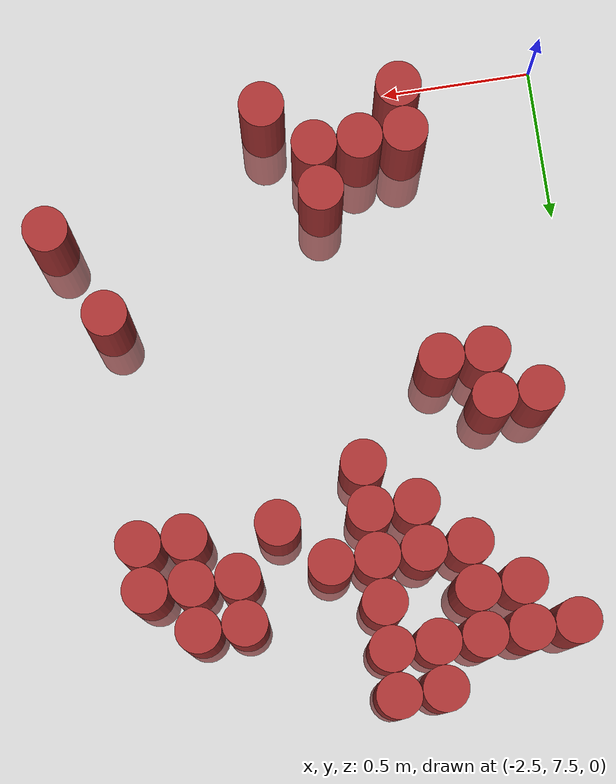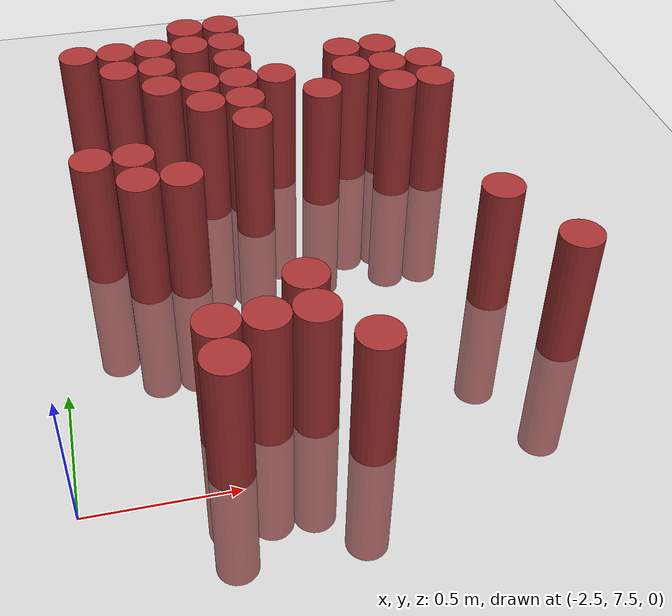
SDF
<sdf version="1.6">
 <world name="default">
  <model name="ground_plane">
   <static>1</static>
   <link name="link">
    <collision name="collision">
     <geometry><plane><normal>0 0 1</normal><size>100 100</size></plane></geometry>
     <surface><friction><ode><mu>100</mu><mu2>50</mu2></ode></friction></surface>
    </collision>
    <visual name="visual">
     <cast_shadows>0</cast_shadows>
     <geometry><plane><normal>0 0 1</normal><size>100 100</size></plane></geometry>
     <material>
      <script><uri>file://media/materials/scripts/gazebo.material</uri><name>Gazebo/Grey</name></script>
     </material>
    </visual>
   </link>
  </model>
  <model name="unit_cylinder_194">
   <static>1</static>
   <pose>-2.325000 8.625000 0.000000 0.000000 0.000000 0.000000</pose>
   <link name="link">
    <inertial>
     <mass>1</mass>
     <inertia><ixx>0.145833</ixx><ixy>0</ixy><ixz>0</ixz><iyy>0.145833</iyy><iyz>0</iyz><izz>0.125</izz></inertia>
    </inertial>
    <collision name="collision">
     <geometry><cylinder><radius>0.075000</radius><length>1</length></cylinder></geometry>
    </collision>
    <visual name="visual">
     <geometry><cylinder><radius>0.075000</radius><length>1</length></cylinder></geometry>
     <material>
      <ambient>0.648000 0.192000 0.192000 1</ambient>
      <diffuse>0.648000 0.192000 0.192000 1</diffuse>
     </material>
     <material>
      <script><name>Gazebo/Grey</name><uri>file://media/materials/scripts/gazebo.material</uri></script>
     </material>
    </visual>
    <sensor name="sensor_contact" type="contact"><contact><collision>collision</collision></contact></sensor>
   </link>
   <plugin filename="gz-sim-touchplugin-system" name="gz::sim::systems::TouchPlugin">
    <target>robot</target>
    <namespace>robot</namespace>
    <time>0.001</time>
    <enabled>true</enabled>
   </plugin>
  </model>
  <model name="unit_cylinder_195">
   <static>1</static>
   <pose>-2.325000 9.375000 0.000000 0.000000 0.000000 0.000000</pose>
   <link name="link">
    <inertial>
     <mass>1</mass>
     <inertia><ixx>0.145833</ixx><ixy>0</ixy><ixz>0</ixz><iyy>0.145833</iyy><iyz>0</iyz><izz>0.125</izz></inertia>
    </inertial>
    <collision name="collision">
     <geometry><cylinder><radius>0.075000</radius><length>1</length></cylinder></geometry>
    </collision>
    <visual name="visual">
     <geometry><cylinder><radius>0.075000</radius><length>1</length></cylinder></geometry>
     <material>
      <ambient>0.648000 0.192000 0.192000 1</ambient>
      <diffuse>0.648000 0.192000 0.192000 1</diffuse>
     </material>
     <material>
      <script><name>Gazebo/Grey</name><uri>file://media/materials/scripts/gazebo.material</uri></script>
     </material>
    </visual>
    <sensor name="sensor_contact" type="contact"><contact><collision>collision</collision></contact></sensor>
   </link>
   <plugin filename="gz-sim-touchplugin-system" name="gz::sim::systems::TouchPlugin">
    <target>robot</target>
    <namespace>robot</namespace>
    <time>0.001</time>
    <enabled>true</enabled>
   </plugin>
  </model>
  <model name="unit_cylinder_202">
   <static>1</static>
   <pose>-2.175000 8.475000 0.000000 0.000000 0.000000 0.000000</pose>
   <link name="link">
    <inertial>
     <mass>1</mass>
     <inertia><ixx>0.145833</ixx><ixy>0</ixy><ixz>0</ixz><iyy>0.145833</iyy><iyz>0</iyz><izz>0.125</izz></inertia>
    </inertial>
    <collision name="collision">
     <geometry><cylinder><radius>0.075000</radius><length>1</length></cylinder></geometry>
    </collision>
    <visual name="visual">
     <geometry><cylinder><radius>0.075000</radius><length>1</length></cylinder></geometry>
     <material>
      <ambient>0.648000 0.192000 0.192000 1</ambient>
      <diffuse>0.648000 0.192000 0.192000 1</diffuse>
     </material>
     <material>
      <script><name>Gazebo/Grey</name><uri>file://media/materials/scripts/gazebo.material</uri></script>
     </material>
    </visual>
    <sensor name="sensor_contact" type="contact"><contact><collision>collision</collision></contact></sensor>
   </link>
   <plugin filename="gz-sim-touchplugin-system" name="gz::sim::systems::TouchPlugin">
    <target>robot</target>
    <namespace>robot</namespace>
    <time>0.001</time>
    <enabled>true</enabled>
   </plugin>
  </model>
  <model name="unit_cylinder_203">
   <static>1</static>
   <pose>-2.175000 8.625000 0.000000 0.000000 0.000000 0.000000</pose>
   <link name="link">
    <inertial>
     <mass>1</mass>
     <inertia><ixx>0.145833</ixx><ixy>0</ixy><ixz>0</ixz><iyy>0.145833</iyy><iyz>0</iyz><izz>0.125</izz></inertia>
    </inertial>
    <collision name="collision">
     <geometry><cylinder><radius>0.075000</radius><length>1</length></cylinder></geometry>
    </collision>
    <visual name="visual">
     <geometry><cylinder><radius>0.075000</radius><length>1</length></cylinder></geometry>
     <material>
      <ambient>0.648000 0.192000 0.192000 1</ambient>
      <diffuse>0.648000 0.192000 0.192000 1</diffuse>
     </material>
     <material>
      <script><name>Gazebo/Grey</name><uri>file://media/materials/scripts/gazebo.material</uri></script>
     </material>
    </visual>
    <sensor name="sensor_contact" type="contact"><contact><collision>collision</collision></contact></sensor>
   </link>
   <plugin filename="gz-sim-touchplugin-system" name="gz::sim::systems::TouchPlugin">
    <target>robot</target>
    <namespace>robot</namespace>
    <time>0.001</time>
    <enabled>true</enabled>
   </plugin>
  </model>
  <model name="unit_cylinder_204">
   <static>1</static>
   <pose>-2.175000 9.225000 0.000000 0.000000 0.000000 0.000000</pose>
   <link name="link">
    <inertial>
     <mass>1</mass>
     <inertia><ixx>0.145833</ixx><ixy>0</ixy><ixz>0</ixz><iyy>0.145833</iyy><iyz>0</iyz><izz>0.125</izz></inertia>
    </inertial>
    <collision name="collision">
     <geometry><cylinder><radius>0.075000</radius><length>1</length></cylinder></geometry>
    </collision>
    <visual name="visual">
     <geometry><cylinder><radius>0.075000</radius><length>1</length></cylinder></geometry>
     <material>
      <ambient>0.648000 0.192000 0.192000 1</ambient>
      <diffuse>0.648000 0.192000 0.192000 1</diffuse>
     </material>
     <material>
      <script><name>Gazebo/Grey</name><uri>file://media/materials/scripts/gazebo.material</uri></script>
     </material>
    </visual>
    <sensor name="sensor_contact" type="contact"><contact><collision>collision</collision></contact></sensor>
   </link>
   <plugin filename="gz-sim-touchplugin-system" name="gz::sim::systems::TouchPlugin">
    <target>robot</target>
    <namespace>robot</namespace>
    <time>0.001</time>
    <enabled>true</enabled>
   </plugin>
  </model>
  <model name="unit_cylinder_205">
   <static>1</static>
   <pose>-2.175000 9.375000 0.000000 0.000000 0.000000 0.000000</pose>
   <link name="link">
    <inertial>
     <mass>1</mass>
     <inertia><ixx>0.145833</ixx><ixy>0</ixy><ixz>0</ixz><iyy>0.145833</iyy><iyz>0</iyz><izz>0.125</izz></inertia>
    </inertial>
    <collision name="collision">
     <geometry><cylinder><radius>0.075000</radius><length>1</length></cylinder></geometry>
    </collision>
    <visual name="visual">
     <geometry><cylinder><radius>0.075000</radius><length>1</length></cylinder></geometry>
     <material>
      <ambient>0.648000 0.192000 0.192000 1</ambient>
      <diffuse>0.648000 0.192000 0.192000 1</diffuse>
     </material>
     <material>
      <script><name>Gazebo/Grey</name><uri>file://media/materials/scripts/gazebo.material</uri></script>
     </material>
    </visual>
    <sensor name="sensor_contact" type="contact"><contact><collision>collision</collision></contact></sensor>
   </link>
   <plugin filename="gz-sim-touchplugin-system" name="gz::sim::systems::TouchPlugin">
    <target>robot</target>
    <namespace>robot</namespace>
    <time>0.001</time>
    <enabled>true</enabled>
   </plugin>
  </model>
  <model name="unit_cylinder_211">
   <static>1</static>
   <pose>-2.025000 7.575000 0.000000 0.000000 0.000000 0.000000</pose>
   <link name="link">
    <inertial>
     <mass>1</mass>
     <inertia><ixx>0.145833</ixx><ixy>0</ixy><ixz>0</ixz><iyy>0.145833</iyy><iyz>0</iyz><izz>0.125</izz></inertia>
    </inertial>
    <collision name="collision">
     <geometry><cylinder><radius>0.075000</radius><length>1</length></cylinder></geometry>
    </collision>
    <visual name="visual">
     <geometry><cylinder><radius>0.075000</radius><length>1</length></cylinder></geometry>
     <material>
      <ambient>0.648000 0.192000 0.192000 1</ambient>
      <diffuse>0.648000 0.192000 0.192000 1</diffuse>
     </material>
     <material>
      <script><name>Gazebo/Grey</name><uri>file://media/materials/scripts/gazebo.material</uri></script>
     </material>
    </visual>
    <sensor name="sensor_contact" type="contact"><contact><collision>collision</collision></contact></sensor>
   </link>
   <plugin filename="gz-sim-touchplugin-system" name="gz::sim::systems::TouchPlugin">
    <target>robot</target>
    <namespace>robot</namespace>
    <time>0.001</time>
    <enabled>true</enabled>
   </plugin>
  </model>
  <model name="unit_cylinder_212">
   <static>1</static>
   <pose>-2.025000 7.725000 0.000000 0.000000 0.000000 0.000000</pose>
   <link name="link">
    <inertial>
     <mass>1</mass>
     <inertia><ixx>0.145833</ixx><ixy>0</ixy><ixz>0</ixz><iyy>0.145833</iyy><iyz>0</iyz><izz>0.125</izz></inertia>
    </inertial>
    <collision name="collision">
     <geometry><cylinder><radius>0.075000</radius><length>1</length></cylinder></geometry>
    </collision>
    <visual name="visual">
     <geometry><cylinder><radius>0.075000</radius><length>1</length></cylinder></geometry>
     <material>
      <ambient>0.648000 0.192000 0.192000 1</ambient>
      <diffuse>0.648000 0.192000 0.192000 1</diffuse>
     </material>
     <material>
      <script><name>Gazebo/Grey</name><uri>file://media/materials/scripts/gazebo.material</uri></script>
     </material>
    </visual>
    <sensor name="sensor_contact" type="contact"><contact><collision>collision</collision></contact></sensor>
   </link>
   <plugin filename="gz-sim-touchplugin-system" name="gz::sim::systems::TouchPlugin">
    <target>robot</target>
    <namespace>robot</namespace>
    <time>0.001</time>
    <enabled>true</enabled>
   </plugin>
  </model>
  <model name="unit_cylinder_213">
   <static>1</static>
   <pose>-2.025000 8.475000 0.000000 0.000000 0.000000 0.000000</pose>
   <link name="link">
    <inertial>
     <mass>1</mass>
     <inertia><ixx>0.145833</ixx><ixy>0</ixy><ixz>0</ixz><iyy>0.145833</iyy><iyz>0</iyz><izz>0.125</izz></inertia>
    </inertial>
    <collision name="collision">
     <geometry><cylinder><radius>0.075000</radius><length>1</length></cylinder></geometry>
    </collision>
    <visual name="visual">
     <geometry><cylinder><radius>0.075000</radius><length>1</length></cylinder></geometry>
     <material>
      <ambient>0.648000 0.192000 0.192000 1</ambient>
      <diffuse>0.648000 0.192000 0.192000 1</diffuse>
     </material>
     <material>
      <script><name>Gazebo/Grey</name><uri>file://media/materials/scripts/gazebo.material</uri></script>
     </material>
    </visual>
    <sensor name="sensor_contact" type="contact"><contact><collision>collision</collision></contact></sensor>
   </link>
   <plugin filename="gz-sim-touchplugin-system" name="gz::sim::systems::TouchPlugin">
    <target>robot</target>
    <namespace>robot</namespace>
    <time>0.001</time>
    <enabled>true</enabled>
   </plugin>
  </model>
  <model name="unit_cylinder_214">
   <static>1</static>
   <pose>-2.025000 9.075000 0.000000 0.000000 0.000000 0.000000</pose>
   <link name="link">
    <inertial>
     <mass>1</mass>
     <inertia><ixx>0.145833</ixx><ixy>0</ixy><ixz>0</ixz><iyy>0.145833</iyy><iyz>0</iyz><izz>0.125</izz></inertia>
    </inertial>
    <collision name="collision">
     <geometry><cylinder><radius>0.075000</radius><length>1</length></cylinder></geometry>
    </collision>
    <visual name="visual">
     <geometry><cylinder><radius>0.075000</radius><length>1</length></cylinder></geometry>
     <material>
      <ambient>0.648000 0.192000 0.192000 1</ambient>
      <diffuse>0.648000 0.192000 0.192000 1</diffuse>
     </material>
     <material>
      <script><name>Gazebo/Grey</name><uri>file://media/materials/scripts/gazebo.material</uri></script>
     </material>
    </visual>
    <sensor name="sensor_contact" type="contact"><contact><collision>collision</collision></contact></sensor>
   </link>
   <plugin filename="gz-sim-touchplugin-system" name="gz::sim::systems::TouchPlugin">
    <target>robot</target>
    <namespace>robot</namespace>
    <time>0.001</time>
    <enabled>true</enabled>
   </plugin>
  </model>
  <model name="unit_cylinder_215">
   <static>1</static>
   <pose>-2.025000 9.225000 0.000000 0.000000 0.000000 0.000000</pose>
   <link name="link">
    <inertial>
     <mass>1</mass>
     <inertia><ixx>0.145833</ixx><ixy>0</ixy><ixz>0</ixz><iyy>0.145833</iyy><iyz>0</iyz><izz>0.125</izz></inertia>
    </inertial>
    <collision name="collision">
     <geometry><cylinder><radius>0.075000</radius><length>1</length></cylinder></geometry>
    </collision>
    <visual name="visual">
     <geometry><cylinder><radius>0.075000</radius><length>1</length></cylinder></geometry>
     <material>
      <ambient>0.648000 0.192000 0.192000 1</ambient>
      <diffuse>0.648000 0.192000 0.192000 1</diffuse>
     </material>
     <material>
      <script><name>Gazebo/Grey</name><uri>file://media/materials/scripts/gazebo.material</uri></script>
     </material>
    </visual>
    <sensor name="sensor_contact" type="contact"><contact><collision>collision</collision></contact></sensor>
   </link>
   <plugin filename="gz-sim-touchplugin-system" name="gz::sim::systems::TouchPlugin">
    <target>robot</target>
    <namespace>robot</namespace>
    <time>0.001</time>
    <enabled>true</enabled>
   </plugin>
  </model>
  <model name="unit_cylinder_216">
   <static>1</static>
   <pose>-2.025000 9.375000 0.000000 0.000000 0.000000 0.000000</pose>
   <link name="link">
    <inertial>
     <mass>1</mass>
     <inertia><ixx>0.145833</ixx><ixy>0</ixy><ixz>0</ixz><iyy>0.145833</iyy><iyz>0</iyz><izz>0.125</izz></inertia>
    </inertial>
    <collision name="collision">
     <geometry><cylinder><radius>0.075000</radius><length>1</length></cylinder></geometry>
    </collision>
    <visual name="visual">
     <geometry><cylinder><radius>0.075000</radius><length>1</length></cylinder></geometry>
     <material>
      <ambient>0.648000 0.192000 0.192000 1</ambient>
      <diffuse>0.648000 0.192000 0.192000 1</diffuse>
     </material>
     <material>
      <script><name>Gazebo/Grey</name><uri>file://media/materials/scripts/gazebo.material</uri></script>
     </material>
    </visual>
    <sensor name="sensor_contact" type="contact"><contact><collision>collision</collision></contact></sensor>
   </link>
   <plugin filename="gz-sim-touchplugin-system" name="gz::sim::systems::TouchPlugin">
    <target>robot</target>
    <namespace>robot</namespace>
    <time>0.001</time>
    <enabled>true</enabled>
   </plugin>
  </model>
  <model name="unit_cylinder_220">
   <static>1</static>
   <pose>-1.875000 7.725000 0.000000 0.000000 0.000000 0.000000</pose>
   <link name="link">
    <inertial>
     <mass>1</mass>
     <inertia><ixx>0.145833</ixx><ixy>0</ixy><ixz>0</ixz><iyy>0.145833</iyy><iyz>0</iyz><izz>0.125</izz></inertia>
    </inertial>
    <collision name="collision">
     <geometry><cylinder><radius>0.075000</radius><length>1</length></cylinder></geometry>
    </collision>
    <visual name="visual">
     <geometry><cylinder><radius>0.075000</radius><length>1</length></cylinder></geometry>
     <material>
      <ambient>0.648000 0.192000 0.192000 1</ambient>
      <diffuse>0.648000 0.192000 0.192000 1</diffuse>
     </material>
     <material>
      <script><name>Gazebo/Grey</name><uri>file://media/materials/scripts/gazebo.material</uri></script>
     </material>
    </visual>
    <sensor name="sensor_contact" type="contact"><contact><collision>collision</collision></contact></sensor>
   </link>
   <plugin filename="gz-sim-touchplugin-system" name="gz::sim::systems::TouchPlugin">
    <target>robot</target>
    <namespace>robot</namespace>
    <time>0.001</time>
    <enabled>true</enabled>
   </plugin>
  </model>
  <model name="unit_cylinder_221">
   <static>1</static>
   <pose>-1.875000 8.925000 0.000000 0.000000 0.000000 0.000000</pose>
   <link name="link">
    <inertial>
     <mass>1</mass>
     <inertia><ixx>0.145833</ixx><ixy>0</ixy><ixz>0</ixz><iyy>0.145833</iyy><iyz>0</iyz><izz>0.125</izz></inertia>
    </inertial>
    <collision name="collision">
     <geometry><cylinder><radius>0.075000</radius><length>1</length></cylinder></geometry>
    </collision>
    <visual name="visual">
     <geometry><cylinder><radius>0.075000</radius><length>1</length></cylinder></geometry>
     <material>
      <ambient>0.648000 0.192000 0.192000 1</ambient>
      <diffuse>0.648000 0.192000 0.192000 1</diffuse>
     </material>
     <material>
      <script><name>Gazebo/Grey</name><uri>file://media/materials/scripts/gazebo.material</uri></script>
     </material>
    </visual>
    <sensor name="sensor_contact" type="contact"><contact><collision>collision</collision></contact></sensor>
   </link>
   <plugin filename="gz-sim-touchplugin-system" name="gz::sim::systems::TouchPlugin">
    <target>robot</target>
    <namespace>robot</namespace>
    <time>0.001</time>
    <enabled>true</enabled>
   </plugin>
  </model>
  <model name="unit_cylinder_222">
   <static>1</static>
   <pose>-1.875000 9.075000 0.000000 0.000000 0.000000 0.000000</pose>
   <link name="link">
    <inertial>
     <mass>1</mass>
     <inertia><ixx>0.145833</ixx><ixy>0</ixy><ixz>0</ixz><iyy>0.145833</iyy><iyz>0</iyz><izz>0.125</izz></inertia>
    </inertial>
    <collision name="collision">
     <geometry><cylinder><radius>0.075000</radius><length>1</length></cylinder></geometry>
    </collision>
    <visual name="visual">
     <geometry><cylinder><radius>0.075000</radius><length>1</length></cylinder></geometry>
     <material>
      <ambient>0.648000 0.192000 0.192000 1</ambient>
      <diffuse>0.648000 0.192000 0.192000 1</diffuse>
     </material>
     <material>
      <script><name>Gazebo/Grey</name><uri>file://media/materials/scripts/gazebo.material</uri></script>
     </material>
    </visual>
    <sensor name="sensor_contact" type="contact"><contact><collision>collision</collision></contact></sensor>
   </link>
   <plugin filename="gz-sim-touchplugin-system" name="gz::sim::systems::TouchPlugin">
    <target>robot</target>
    <namespace>robot</namespace>
    <time>0.001</time>
    <enabled>true</enabled>
   </plugin>
  </model>
  <model name="unit_cylinder_223">
   <static>1</static>
   <pose>-1.875000 9.375000 0.000000 0.000000 0.000000 0.000000</pose>
   <link name="link">
    <inertial>
     <mass>1</mass>
     <inertia><ixx>0.145833</ixx><ixy>0</ixy><ixz>0</ixz><iyy>0.145833</iyy><iyz>0</iyz><izz>0.125</izz></inertia>
    </inertial>
    <collision name="collision">
     <geometry><cylinder><radius>0.075000</radius><length>1</length></cylinder></geometry>
    </collision>
    <visual name="visual">
     <geometry><cylinder><radius>0.075000</radius><length>1</length></cylinder></geometry>
     <material>
      <ambient>0.648000 0.192000 0.192000 1</ambient>
      <diffuse>0.648000 0.192000 0.192000 1</diffuse>
     </material>
     <material>
      <script><name>Gazebo/Grey</name><uri>file://media/materials/scripts/gazebo.material</uri></script>
     </material>
    </visual>
    <sensor name="sensor_contact" type="contact"><contact><collision>collision</collision></contact></sensor>
   </link>
   <plugin filename="gz-sim-touchplugin-system" name="gz::sim::systems::TouchPlugin">
    <target>robot</target>
    <namespace>robot</namespace>
    <time>0.001</time>
    <enabled>true</enabled>
   </plugin>
  </model>
  <model name="unit_cylinder_224">
   <static>1</static>
   <pose>-1.875000 9.525000 0.000000 0.000000 0.000000 0.000000</pose>
   <link name="link">
    <inertial>
     <mass>1</mass>
     <inertia><ixx>0.145833</ixx><ixy>0</ixy><ixz>0</ixz><iyy>0.145833</iyy><iyz>0</iyz><izz>0.125</izz></inertia>
    </inertial>
    <collision name="collision">
     <geometry><cylinder><radius>0.075000</radius><length>1</length></cylinder></geometry>
    </collision>
    <visual name="visual">
     <geometry><cylinder><radius>0.075000</radius><length>1</length></cylinder></geometry>
     <material>
      <ambient>0.648000 0.192000 0.192000 1</ambient>
      <diffuse>0.648000 0.192000 0.192000 1</diffuse>
     </material>
     <material>
      <script><name>Gazebo/Grey</name><uri>file://media/materials/scripts/gazebo.material</uri></script>
     </material>
    </visual>
    <sensor name="sensor_contact" type="contact"><contact><collision>collision</collision></contact></sensor>
   </link>
   <plugin filename="gz-sim-touchplugin-system" name="gz::sim::systems::TouchPlugin">
    <target>robot</target>
    <namespace>robot</namespace>
    <time>0.001</time>
    <enabled>true</enabled>
   </plugin>
  </model>
  <model name="unit_cylinder_227">
   <static>1</static>
   <pose>-1.725000 7.725000 0.000000 0.000000 0.000000 0.000000</pose>
   <link name="link">
    <inertial>
     <mass>1</mass>
     <inertia><ixx>0.145833</ixx><ixy>0</ixy><ixz>0</ixz><iyy>0.145833</iyy><iyz>0</iyz><izz>0.125</izz></inertia>
    </inertial>
    <collision name="collision">
     <geometry><cylinder><radius>0.075000</radius><length>1</length></cylinder></geometry>
    </collision>
    <visual name="visual">
     <geometry><cylinder><radius>0.075000</radius><length>1</length></cylinder></geometry>
     <material>
      <ambient>0.648000 0.192000 0.192000 1</ambient>
      <diffuse>0.648000 0.192000 0.192000 1</diffuse>
     </material>
     <material>
      <script><name>Gazebo/Grey</name><uri>file://media/materials/scripts/gazebo.material</uri></script>
     </material>
    </visual>
    <sensor name="sensor_contact" type="contact"><contact><collision>collision</collision></contact></sensor>
   </link>
   <plugin filename="gz-sim-touchplugin-system" name="gz::sim::systems::TouchPlugin">
    <target>robot</target>
    <namespace>robot</namespace>
    <time>0.001</time>
    <enabled>true</enabled>
   </plugin>
  </model>
  <model name="unit_cylinder_228">
   <static>1</static>
   <pose>-1.725000 7.875000 0.000000 0.000000 0.000000 0.000000</pose>
   <link name="link">
    <inertial>
     <mass>1</mass>
     <inertia><ixx>0.145833</ixx><ixy>0</ixy><ixz>0</ixz><iyy>0.145833</iyy><iyz>0</iyz><izz>0.125</izz></inertia>
    </inertial>
    <collision name="collision">
     <geometry><cylinder><radius>0.075000</radius><length>1</length></cylinder></geometry>
    </collision>
    <visual name="visual">
     <geometry><cylinder><radius>0.075000</radius><length>1</length></cylinder></geometry>
     <material>
      <ambient>0.648000 0.192000 0.192000 1</ambient>
      <diffuse>0.648000 0.192000 0.192000 1</diffuse>
     </material>
     <material>
      <script><name>Gazebo/Grey</name><uri>file://media/materials/scripts/gazebo.material</uri></script>
     </material>
    </visual>
    <sensor name="sensor_contact" type="contact"><contact><collision>collision</collision></contact></sensor>
   </link>
   <plugin filename="gz-sim-touchplugin-system" name="gz::sim::systems::TouchPlugin">
    <target>robot</target>
    <namespace>robot</namespace>
    <time>0.001</time>
    <enabled>true</enabled>
   </plugin>
  </model>
  <model name="unit_cylinder_229">
   <static>1</static>
   <pose>-1.725000 8.775000 0.000000 0.000000 0.000000 0.000000</pose>
   <link name="link">
    <inertial>
     <mass>1</mass>
     <inertia><ixx>0.145833</ixx><ixy>0</ixy><ixz>0</ixz><iyy>0.145833</iyy><iyz>0</iyz><izz>0.125</izz></inertia>
    </inertial>
    <collision name="collision">
     <geometry><cylinder><radius>0.075000</radius><length>1</length></cylinder></geometry>
    </collision>
    <visual name="visual">
     <geometry><cylinder><radius>0.075000</radius><length>1</length></cylinder></geometry>
     <material>
      <ambient>0.648000 0.192000 0.192000 1</ambient>
      <diffuse>0.648000 0.192000 0.192000 1</diffuse>
     </material>
     <material>
      <script><name>Gazebo/Grey</name><uri>file://media/materials/scripts/gazebo.material</uri></script>
     </material>
    </visual>
    <sensor name="sensor_contact" type="contact"><contact><collision>collision</collision></contact></sensor>
   </link>
   <plugin filename="gz-sim-touchplugin-system" name="gz::sim::systems::TouchPlugin">
    <target>robot</target>
    <namespace>robot</namespace>
    <time>0.001</time>
    <enabled>true</enabled>
   </plugin>
  </model>
  <model name="unit_cylinder_230">
   <static>1</static>
   <pose>-1.725000 8.925000 0.000000 0.000000 0.000000 0.000000</pose>
   <link name="link">
    <inertial>
     <mass>1</mass>
     <inertia><ixx>0.145833</ixx><ixy>0</ixy><ixz>0</ixz><iyy>0.145833</iyy><iyz>0</iyz><izz>0.125</izz></inertia>
    </inertial>
    <collision name="collision">
     <geometry><cylinder><radius>0.075000</radius><length>1</length></cylinder></geometry>
    </collision>
    <visual name="visual">
     <geometry><cylinder><radius>0.075000</radius><length>1</length></cylinder></geometry>
     <material>
      <ambient>0.648000 0.192000 0.192000 1</ambient>
      <diffuse>0.648000 0.192000 0.192000 1</diffuse>
     </material>
     <material>
      <script><name>Gazebo/Grey</name><uri>file://media/materials/scripts/gazebo.material</uri></script>
     </material>
    </visual>
    <sensor name="sensor_contact" type="contact"><contact><collision>collision</collision></contact></sensor>
   </link>
   <plugin filename="gz-sim-touchplugin-system" name="gz::sim::systems::TouchPlugin">
    <target>robot</target>
    <namespace>robot</namespace>
    <time>0.001</time>
    <enabled>true</enabled>
   </plugin>
  </model>
  <model name="unit_cylinder_231">
   <static>1</static>
   <pose>-1.725000 9.075000 0.000000 0.000000 0.000000 0.000000</pose>
   <link name="link">
    <inertial>
     <mass>1</mass>
     <inertia><ixx>0.145833</ixx><ixy>0</ixy><ixz>0</ixz><iyy>0.145833</iyy><iyz>0</iyz><izz>0.125</izz></inertia>
    </inertial>
    <collision name="collision">
     <geometry><cylinder><radius>0.075000</radius><length>1</length></cylinder></geometry>
    </collision>
    <visual name="visual">
     <geometry><cylinder><radius>0.075000</radius><length>1</length></cylinder></geometry>
     <material>
      <ambient>0.648000 0.192000 0.192000 1</ambient>
      <diffuse>0.648000 0.192000 0.192000 1</diffuse>
     </material>
     <material>
      <script><name>Gazebo/Grey</name><uri>file://media/materials/scripts/gazebo.material</uri></script>
     </material>
    </visual>
    <sensor name="sensor_contact" type="contact"><contact><collision>collision</collision></contact></sensor>
   </link>
   <plugin filename="gz-sim-touchplugin-system" name="gz::sim::systems::TouchPlugin">
    <target>robot</target>
    <namespace>robot</namespace>
    <time>0.001</time>
    <enabled>true</enabled>
   </plugin>
  </model>
  <model name="unit_cylinder_232">
   <static>1</static>
   <pose>-1.725000 9.225000 0.000000 0.000000 0.000000 0.000000</pose>
   <link name="link">
    <inertial>
     <mass>1</mass>
     <inertia><ixx>0.145833</ixx><ixy>0</ixy><ixz>0</ixz><iyy>0.145833</iyy><iyz>0</iyz><izz>0.125</izz></inertia>
    </inertial>
    <collision name="collision">
     <geometry><cylinder><radius>0.075000</radius><length>1</length></cylinder></geometry>
    </collision>
    <visual name="visual">
     <geometry><cylinder><radius>0.075000</radius><length>1</length></cylinder></geometry>
     <material>
      <ambient>0.648000 0.192000 0.192000 1</ambient>
      <diffuse>0.648000 0.192000 0.192000 1</diffuse>
     </material>
     <material>
      <script><name>Gazebo/Grey</name><uri>file://media/materials/scripts/gazebo.material</uri></script>
     </material>
    </visual>
    <sensor name="sensor_contact" type="contact"><contact><collision>collision</collision></contact></sensor>
   </link>
   <plugin filename="gz-sim-touchplugin-system" name="gz::sim::systems::TouchPlugin">
    <target>robot</target>
    <namespace>robot</namespace>
    <time>0.001</time>
    <enabled>true</enabled>
   </plugin>
  </model>
  <model name="unit_cylinder_233">
   <static>1</static>
   <pose>-1.725000 9.375000 0.000000 0.000000 0.000000 0.000000</pose>
   <link name="link">
    <inertial>
     <mass>1</mass>
     <inertia><ixx>0.145833</ixx><ixy>0</ixy><ixz>0</ixz><iyy>0.145833</iyy><iyz>0</iyz><izz>0.125</izz></inertia>
    </inertial>
    <collision name="collision">
     <geometry><cylinder><radius>0.075000</radius><length>1</length></cylinder></geometry>
    </collision>
    <visual name="visual">
     <geometry><cylinder><radius>0.075000</radius><length>1</length></cylinder></geometry>
     <material>
      <ambient>0.648000 0.192000 0.192000 1</ambient>
      <diffuse>0.648000 0.192000 0.192000 1</diffuse>
     </material>
     <material>
      <script><name>Gazebo/Grey</name><uri>file://media/materials/scripts/gazebo.material</uri></script>
     </material>
    </visual>
    <sensor name="sensor_contact" type="contact"><contact><collision>collision</collision></contact></sensor>
   </link>
   <plugin filename="gz-sim-touchplugin-system" name="gz::sim::systems::TouchPlugin">
    <target>robot</target>
    <namespace>robot</namespace>
    <time>0.001</time>
    <enabled>true</enabled>
   </plugin>
  </model>
  <model name="unit_cylinder_234">
   <static>1</static>
   <pose>-1.725000 9.525000 0.000000 0.000000 0.000000 0.000000</pose>
   <link name="link">
    <inertial>
     <mass>1</mass>
     <inertia><ixx>0.145833</ixx><ixy>0</ixy><ixz>0</ixz><iyy>0.145833</iyy><iyz>0</iyz><izz>0.125</izz></inertia>
    </inertial>
    <collision name="collision">
     <geometry><cylinder><radius>0.075000</radius><length>1</length></cylinder></geometry>
    </collision>
    <visual name="visual">
     <geometry><cylinder><radius>0.075000</radius><length>1</length></cylinder></geometry>
     <material>
      <ambient>0.648000 0.192000 0.192000 1</ambient>
      <diffuse>0.648000 0.192000 0.192000 1</diffuse>
     </material>
     <material>
      <script><name>Gazebo/Grey</name><uri>file://media/materials/scripts/gazebo.material</uri></script>
     </material>
    </visual>
    <sensor name="sensor_contact" type="contact"><contact><collision>collision</collision></contact></sensor>
   </link>
   <plugin filename="gz-sim-touchplugin-system" name="gz::sim::systems::TouchPlugin">
    <target>robot</target>
    <namespace>robot</namespace>
    <time>0.001</time>
    <enabled>true</enabled>
   </plugin>
  </model>
  <model name="unit_cylinder_241">
   <static>1</static>
   <pose>-1.575000 7.575000 0.000000 0.000000 0.000000 0.000000</pose>
   <link name="link">
    <inertial>
     <mass>1</mass>
     <inertia><ixx>0.145833</ixx><ixy>0</ixy><ixz>0</ixz><iyy>0.145833</iyy><iyz>0</iyz><izz>0.125</izz></inertia>
    </inertial>
    <collision name="collision">
     <geometry><cylinder><radius>0.075000</radius><length>1</length></cylinder></geometry>
    </collision>
    <visual name="visual">
     <geometry><cylinder><radius>0.075000</radius><length>1</length></cylinder></geometry>
     <material>
      <ambient>0.648000 0.192000 0.192000 1</ambient>
      <diffuse>0.648000 0.192000 0.192000 1</diffuse>
     </material>
     <material>
      <script><name>Gazebo/Grey</name><uri>file://media/materials/scripts/gazebo.material</uri></script>
     </material>
    </visual>
    <sensor name="sensor_contact" type="contact"><contact><collision>collision</collision></contact></sensor>
   </link>
   <plugin filename="gz-sim-touchplugin-system" name="gz::sim::systems::TouchPlugin">
    <target>robot</target>
    <namespace>robot</namespace>
    <time>0.001</time>
    <enabled>true</enabled>
   </plugin>
  </model>
  <model name="unit_cylinder_242">
   <static>1</static>
   <pose>-1.575000 9.075000 0.000000 0.000000 0.000000 0.000000</pose>
   <link name="link">
    <inertial>
     <mass>1</mass>
     <inertia><ixx>0.145833</ixx><ixy>0</ixy><ixz>0</ixz><iyy>0.145833</iyy><iyz>0</iyz><izz>0.125</izz></inertia>
    </inertial>
    <collision name="collision">
     <geometry><cylinder><radius>0.075000</radius><length>1</length></cylinder></geometry>
    </collision>
    <visual name="visual">
     <geometry><cylinder><radius>0.075000</radius><length>1</length></cylinder></geometry>
     <material>
      <ambient>0.648000 0.192000 0.192000 1</ambient>
      <diffuse>0.648000 0.192000 0.192000 1</diffuse>
     </material>
     <material>
      <script><name>Gazebo/Grey</name><uri>file://media/materials/scripts/gazebo.material</uri></script>
     </material>
    </visual>
    <sensor name="sensor_contact" type="contact"><contact><collision>collision</collision></contact></sensor>
   </link>
   <plugin filename="gz-sim-touchplugin-system" name="gz::sim::systems::TouchPlugin">
    <target>robot</target>
    <namespace>robot</namespace>
    <time>0.001</time>
    <enabled>true</enabled>
   </plugin>
  </model>
  <model name="unit_cylinder_248">
   <static>1</static>
   <pose>-1.425000 8.925000 0.000000 0.000000 0.000000 0.000000</pose>
   <link name="link">
    <inertial>
     <mass>1</mass>
     <inertia><ixx>0.145833</ixx><ixy>0</ixy><ixz>0</ixz><iyy>0.145833</iyy><iyz>0</iyz><izz>0.125</izz></inertia>
    </inertial>
    <collision name="collision">
     <geometry><cylinder><radius>0.075000</radius><length>1</length></cylinder></geometry>
    </collision>
    <visual name="visual">
     <geometry><cylinder><radius>0.075000</radius><length>1</length></cylinder></geometry>
     <material>
      <ambient>0.648000 0.192000 0.192000 1</ambient>
      <diffuse>0.648000 0.192000 0.192000 1</diffuse>
     </material>
     <material>
      <script><name>Gazebo/Grey</name><uri>file://media/materials/scripts/gazebo.material</uri></script>
     </material>
    </visual>
    <sensor name="sensor_contact" type="contact"><contact><collision>collision</collision></contact></sensor>
   </link>
   <plugin filename="gz-sim-touchplugin-system" name="gz::sim::systems::TouchPlugin">
    <target>robot</target>
    <namespace>robot</namespace>
    <time>0.001</time>
    <enabled>true</enabled>
   </plugin>
  </model>
  <model name="unit_cylinder_253">
   <static>1</static>
   <pose>-1.275000 9.075000 0.000000 0.000000 0.000000 0.000000</pose>
   <link name="link">
    <inertial>
     <mass>1</mass>
     <inertia><ixx>0.145833</ixx><ixy>0</ixy><ixz>0</ixz><iyy>0.145833</iyy><iyz>0</iyz><izz>0.125</izz></inertia>
    </inertial>
    <collision name="collision">
     <geometry><cylinder><radius>0.075000</radius><length>1</length></cylinder></geometry>
    </collision>
    <visual name="visual">
     <geometry><cylinder><radius>0.075000</radius><length>1</length></cylinder></geometry>
     <material>
      <ambient>0.648000 0.192000 0.192000 1</ambient>
      <diffuse>0.648000 0.192000 0.192000 1</diffuse>
     </material>
     <material>
      <script><name>Gazebo/Grey</name><uri>file://media/materials/scripts/gazebo.material</uri></script>
     </material>
    </visual>
    <sensor name="sensor_contact" type="contact"><contact><collision>collision</collision></contact></sensor>
   </link>
   <plugin filename="gz-sim-touchplugin-system" name="gz::sim::systems::TouchPlugin">
    <target>robot</target>
    <namespace>robot</namespace>
    <time>0.001</time>
    <enabled>true</enabled>
   </plugin>
  </model>
  <model name="unit_cylinder_254">
   <static>1</static>
   <pose>-1.275000 9.225000 0.000000 0.000000 0.000000 0.000000</pose>
   <link name="link">
    <inertial>
     <mass>1</mass>
     <inertia><ixx>0.145833</ixx><ixy>0</ixy><ixz>0</ixz><iyy>0.145833</iyy><iyz>0</iyz><izz>0.125</izz></inertia>
    </inertial>
    <collision name="collision">
     <geometry><cylinder><radius>0.075000</radius><length>1</length></cylinder></geometry>
    </collision>
    <visual name="visual">
     <geometry><cylinder><radius>0.075000</radius><length>1</length></cylinder></geometry>
     <material>
      <ambient>0.648000 0.192000 0.192000 1</ambient>
      <diffuse>0.648000 0.192000 0.192000 1</diffuse>
     </material>
     <material>
      <script><name>Gazebo/Grey</name><uri>file://media/materials/scripts/gazebo.material</uri></script>
     </material>
    </visual>
    <sensor name="sensor_contact" type="contact"><contact><collision>collision</collision></contact></sensor>
   </link>
   <plugin filename="gz-sim-touchplugin-system" name="gz::sim::systems::TouchPlugin">
    <target>robot</target>
    <namespace>robot</namespace>
    <time>0.001</time>
    <enabled>true</enabled>
   </plugin>
  </model>
  <model name="unit_cylinder_257">
   <static>1</static>
   <pose>-1.125000 8.925000 0.000000 0.000000 0.000000 0.000000</pose>
   <link name="link">
    <inertial>
     <mass>1</mass>
     <inertia><ixx>0.145833</ixx><ixy>0</ixy><ixz>0</ixz><iyy>0.145833</iyy><iyz>0</iyz><izz>0.125</izz></inertia>
    </inertial>
    <collision name="collision">
     <geometry><cylinder><radius>0.075000</radius><length>1</length></cylinder></geometry>
    </collision>
    <visual name="visual">
     <geometry><cylinder><radius>0.075000</radius><length>1</length></cylinder></geometry>
     <material>
      <ambient>0.648000 0.192000 0.192000 1</ambient>
      <diffuse>0.648000 0.192000 0.192000 1</diffuse>
     </material>
     <material>
      <script><name>Gazebo/Grey</name><uri>file://media/materials/scripts/gazebo.material</uri></script>
     </material>
    </visual>
    <sensor name="sensor_contact" type="contact"><contact><collision>collision</collision></contact></sensor>
   </link>
   <plugin filename="gz-sim-touchplugin-system" name="gz::sim::systems::TouchPlugin">
    <target>robot</target>
    <namespace>robot</namespace>
    <time>0.001</time>
    <enabled>true</enabled>
   </plugin>
  </model>
  <model name="unit_cylinder_258">
   <static>1</static>
   <pose>-1.125000 9.075000 0.000000 0.000000 0.000000 0.000000</pose>
   <link name="link">
    <inertial>
     <mass>1</mass>
     <inertia><ixx>0.145833</ixx><ixy>0</ixy><ixz>0</ixz><iyy>0.145833</iyy><iyz>0</iyz><izz>0.125</izz></inertia>
    </inertial>
    <collision name="collision">
     <geometry><cylinder><radius>0.075000</radius><length>1</length></cylinder></geometry>
    </collision>
    <visual name="visual">
     <geometry><cylinder><radius>0.075000</radius><length>1</length></cylinder></geometry>
     <material>
      <ambient>0.648000 0.192000 0.192000 1</ambient>
      <diffuse>0.648000 0.192000 0.192000 1</diffuse>
     </material>
     <material>
      <script><name>Gazebo/Grey</name><uri>file://media/materials/scripts/gazebo.material</uri></script>
     </material>
    </visual>
    <sensor name="sensor_contact" type="contact"><contact><collision>collision</collision></contact></sensor>
   </link>
   <plugin filename="gz-sim-touchplugin-system" name="gz::sim::systems::TouchPlugin">
    <target>robot</target>
    <namespace>robot</namespace>
    <time>0.001</time>
    <enabled>true</enabled>
   </plugin>
  </model>
  <model name="unit_cylinder_259">
   <static>1</static>
   <pose>-1.125000 9.225000 0.000000 0.000000 0.000000 0.000000</pose>
   <link name="link">
    <inertial>
     <mass>1</mass>
     <inertia><ixx>0.145833</ixx><ixy>0</ixy><ixz>0</ixz><iyy>0.145833</iyy><iyz>0</iyz><izz>0.125</izz></inertia>
    </inertial>
    <collision name="collision">
     <geometry><cylinder><radius>0.075000</radius><length>1</length></cylinder></geometry>
    </collision>
    <visual name="visual">
     <geometry><cylinder><radius>0.075000</radius><length>1</length></cylinder></geometry>
     <material>
      <ambient>0.648000 0.192000 0.192000 1</ambient>
      <diffuse>0.648000 0.192000 0.192000 1</diffuse>
     </material>
     <material>
      <script><name>Gazebo/Grey</name><uri>file://media/materials/scripts/gazebo.material</uri></script>
     </material>
    </visual>
    <sensor name="sensor_contact" type="contact"><contact><collision>collision</collision></contact></sensor>
   </link>
   <plugin filename="gz-sim-touchplugin-system" name="gz::sim::systems::TouchPlugin">
    <target>robot</target>
    <namespace>robot</namespace>
    <time>0.001</time>
    <enabled>true</enabled>
   </plugin>
  </model>
  <model name="unit_cylinder_263">
   <static>1</static>
   <pose>-0.975000 8.175000 0.000000 0.000000 0.000000 0.000000</pose>
   <link name="link">
    <inertial>
     <mass>1</mass>
     <inertia><ixx>0.145833</ixx><ixy>0</ixy><ixz>0</ixz><iyy>0.145833</iyy><iyz>0</iyz><izz>0.125</izz></inertia>
    </inertial>
    <collision name="collision">
     <geometry><cylinder><radius>0.075000</radius><length>1</length></cylinder></geometry>
    </collision>
    <visual name="visual">
     <geometry><cylinder><radius>0.075000</radius><length>1</length></cylinder></geometry>
     <material>
      <ambient>0.648000 0.192000 0.192000 1</ambient>
      <diffuse>0.648000 0.192000 0.192000 1</diffuse>
     </material>
     <material>
      <script><name>Gazebo/Grey</name><uri>file://media/materials/scripts/gazebo.material</uri></script>
     </material>
    </visual>
    <sensor name="sensor_contact" type="contact"><contact><collision>collision</collision></contact></sensor>
   </link>
   <plugin filename="gz-sim-touchplugin-system" name="gz::sim::systems::TouchPlugin">
    <target>robot</target>
    <namespace>robot</namespace>
    <time>0.001</time>
    <enabled>true</enabled>
   </plugin>
  </model>
  <model name="unit_cylinder_264">
   <static>1</static>
   <pose>-0.975000 8.925000 0.000000 0.000000 0.000000 0.000000</pose>
   <link name="link">
    <inertial>
     <mass>1</mass>
     <inertia><ixx>0.145833</ixx><ixy>0</ixy><ixz>0</ixz><iyy>0.145833</iyy><iyz>0</iyz><izz>0.125</izz></inertia>
    </inertial>
    <collision name="collision">
     <geometry><cylinder><radius>0.075000</radius><length>1</length></cylinder></geometry>
    </collision>
    <visual name="visual">
     <geometry><cylinder><radius>0.075000</radius><length>1</length></cylinder></geometry>
     <material>
      <ambient>0.648000 0.192000 0.192000 1</ambient>
      <diffuse>0.648000 0.192000 0.192000 1</diffuse>
     </material>
     <material>
      <script><name>Gazebo/Grey</name><uri>file://media/materials/scripts/gazebo.material</uri></script>
     </material>
    </visual>
    <sensor name="sensor_contact" type="contact"><contact><collision>collision</collision></contact></sensor>
   </link>
   <plugin filename="gz-sim-touchplugin-system" name="gz::sim::systems::TouchPlugin">
    <target>robot</target>
    <namespace>robot</namespace>
    <time>0.001</time>
    <enabled>true</enabled>
   </plugin>
  </model>
  <model name="unit_cylinder_265">
   <static>1</static>
   <pose>-0.975000 9.075000 0.000000 0.000000 0.000000 0.000000</pose>
   <link name="link">
    <inertial>
     <mass>1</mass>
     <inertia><ixx>0.145833</ixx><ixy>0</ixy><ixz>0</ixz><iyy>0.145833</iyy><iyz>0</iyz><izz>0.125</izz></inertia>
    </inertial>
    <collision name="collision">
     <geometry><cylinder><radius>0.075000</radius><length>1</length></cylinder></geometry>
    </collision>
    <visual name="visual">
     <geometry><cylinder><radius>0.075000</radius><length>1</length></cylinder></geometry>
     <material>
      <ambient>0.648000 0.192000 0.192000 1</ambient>
      <diffuse>0.648000 0.192000 0.192000 1</diffuse>
     </material>
     <material>
      <script><name>Gazebo/Grey</name><uri>file://media/materials/scripts/gazebo.material</uri></script>
     </material>
    </visual>
    <sensor name="sensor_contact" type="contact"><contact><collision>collision</collision></contact></sensor>
   </link>
   <plugin filename="gz-sim-touchplugin-system" name="gz::sim::systems::TouchPlugin">
    <target>robot</target>
    <namespace>robot</namespace>
    <time>0.001</time>
    <enabled>true</enabled>
   </plugin>
  </model>
  <model name="unit_cylinder_271">
   <static>1</static>
   <pose>-0.825000 7.875000 0.000000 0.000000 0.000000 0.000000</pose>
   <link name="link">
    <inertial>
     <mass>1</mass>
     <inertia><ixx>0.145833</ixx><ixy>0</ixy><ixz>0</ixz><iyy>0.145833</iyy><iyz>0</iyz><izz>0.125</izz></inertia>
    </inertial>
    <collision name="collision">
     <geometry><cylinder><radius>0.075000</radius><length>1</length></cylinder></geometry>
    </collision>
    <visual name="visual">
     <geometry><cylinder><radius>0.075000</radius><length>1</length></cylinder></geometry>
     <material>
      <ambient>0.648000 0.192000 0.192000 1</ambient>
      <diffuse>0.648000 0.192000 0.192000 1</diffuse>
     </material>
     <material>
      <script><name>Gazebo/Grey</name><uri>file://media/materials/scripts/gazebo.material</uri></script>
     </material>
    </visual>
    <sensor name="sensor_contact" type="contact"><contact><collision>collision</collision></contact></sensor>
   </link>
   <plugin filename="gz-sim-touchplugin-system" name="gz::sim::systems::TouchPlugin">
    <target>robot</target>
    <namespace>robot</namespace>
    <time>0.001</time>
    <enabled>true</enabled>
   </plugin>
  </model>
 </world>
</sdf>
